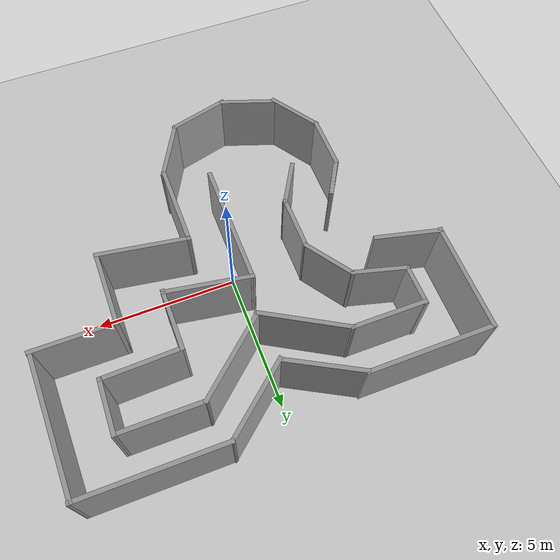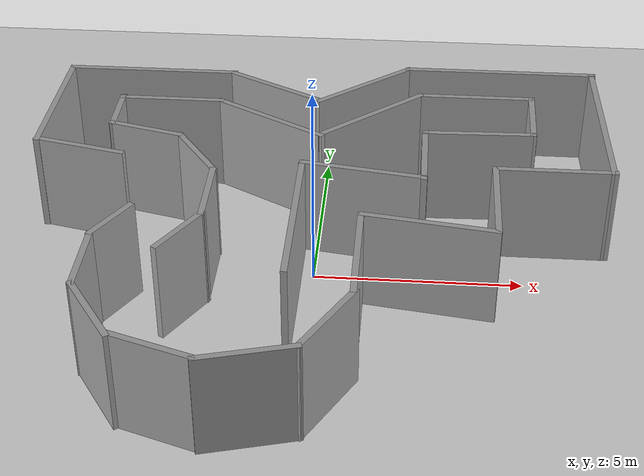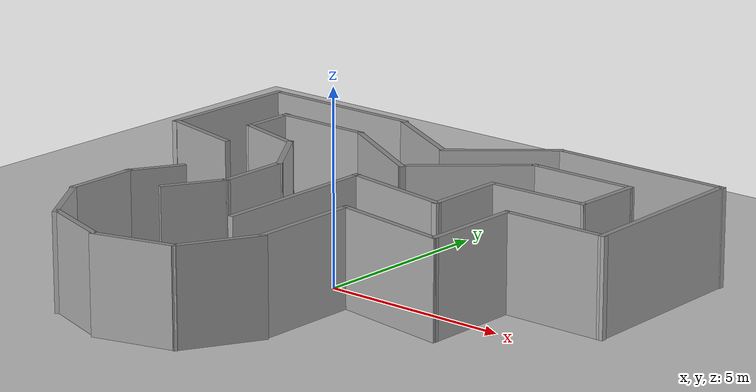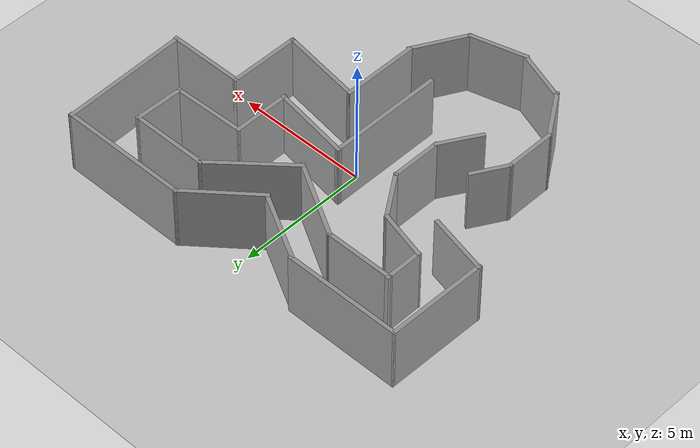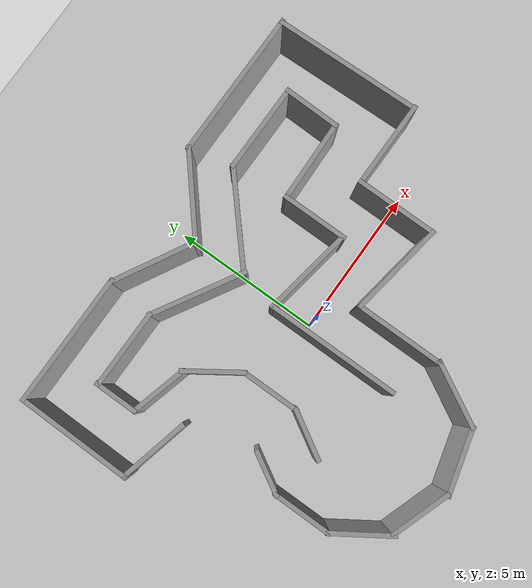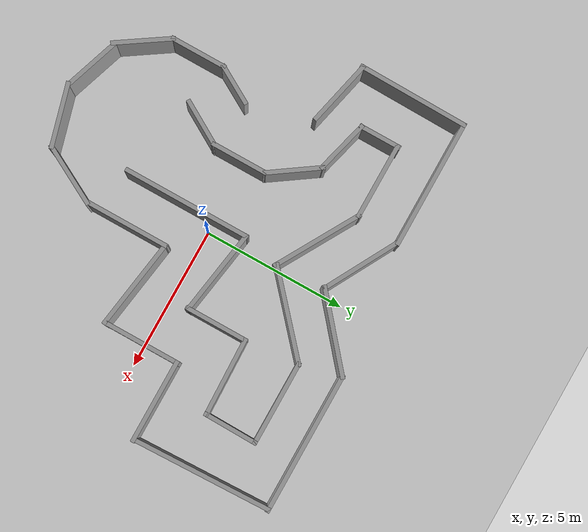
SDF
<sdf version="1.7">
 <world name="default">
  <light name="sun" type="directional">
   <pose>0 0 10 0 -0 0</pose>
   <diffuse>0.8 0.8 0.8 1</diffuse>
   <specular>0.2 0.2 0.2 1</specular>
   <attenuation>
    <range>1000</range>
    <constant>0.9</constant>
    <linear>0.01</linear>
    <quadratic>0.001</quadratic>
   </attenuation>
   <direction>-0.5 0.1 -0.9</direction>
   <spot><inner_angle>0</inner_angle><outer_angle>0</outer_angle><falloff>0</falloff></spot>
  </light>
  <model name="ground_plane">
   <static>1</static>
   <link name="link">
    <collision name="collision">
     <geometry><plane><normal>0 0 1</normal><size>100 100</size></plane></geometry>
     <surface><friction><ode><mu>100</mu><mu2>50</mu2></ode></friction></surface>
    </collision>
    <visual name="visual">
     <cast_shadows>0</cast_shadows>
     <geometry><plane><normal>0 0 1</normal><size>100 100</size></plane></geometry>
     <material>
      <script><uri>file://media/materials/scripts/gazebo.material</uri><name>Gazebo/Grey</name></script>
     </material>
    </visual>
   </link>
  </model>
  <gravity>0 0 -9.8</gravity>
  <magnetic_field>6e-06 2.3e-05 -4.2e-05</magnetic_field>
  <atmosphere type="adiabatic"/>
  <physics type="ode">
   <max_step_size>0.001</max_step_size>
   <real_time_factor>1</real_time_factor>
   <real_time_update_rate>1000</real_time_update_rate>
  </physics>
  <scene><ambient>0.4 0.4 0.4 1</ambient><background>0.7 0.7 0.7 1</background><shadows>1</shadows></scene>
  <audio><device>default</device></audio>
  <spherical_coordinates>
   <surface_model>EARTH_WGS84</surface_model>
   <latitude_deg>0</latitude_deg>
   <longitude_deg>0</longitude_deg>
   <elevation>0</elevation>
   <heading_deg>0</heading_deg>
  </spherical_coordinates>
  <model name="map2_walls">
   <pose>0.048098 -0.017103 0 0 -0 0</pose>
   <link name="Wall_0">
    <collision name="Wall_0_Collision">
     <geometry><box><size>1.5 0.15 2.5</size></box></geometry>
     <pose>0 0 1.25 0 -0 0</pose>
    </collision>
    <visual name="Wall_0_Visual">
     <pose>0 0 1.25 0 -0 0</pose>
     <geometry><box><size>1.5 0.15 2.5</size></box></geometry>
     <material>
      <script><uri>file://media/materials/scripts/gazebo.material</uri><name>Gazebo/Grey</name></script>
      <ambient>1 1 1 1</ambient>
     </material>
     <meta><layer>0</layer></meta>
    </visual>
    <pose>-4.48822 -1.46625 0 0 -0 -2.0944</pose>
   </link>
   <link name="Wall_1">
    <collision name="Wall_1_Collision">
     <geometry><box><size>2 0.15 2.5</size></box></geometry>
     <pose>0 0 1.25 0 -0 0</pose>
    </collision>
    <visual name="Wall_1_Visual">
     <pose>0 0 1.25 0 -0 0</pose>
     <geometry><box><size>2 0.15 2.5</size></box></geometry>
     <material>
      <script><uri>file://media/materials/scripts/gazebo.material</uri><name>Gazebo/Grey</name></script>
      <ambient>1 1 1 1</ambient>
     </material>
     <meta><layer>0</layer></meta>
    </visual>
    <pose>-4.82572 -2.97582 0 0 -0 -1.5708</pose>
   </link>
   <link name="Wall_10">
    <collision name="Wall_10_Collision">
     <geometry><box><size>4.97864 0.15 2.5</size></box></geometry>
     <pose>0 0 1.25 0 -0 0</pose>
    </collision>
    <visual name="Wall_10_Visual">
     <pose>0 0 1.25 0 -0 0</pose>
     <geometry><box><size>4.97864 0.15 2.5</size></box></geometry>
     <material>
      <script><uri>file://media/materials/scripts/gazebo.material</uri><name>Gazebo/Grey</name></script>
      <ambient>1 1 1 1</ambient>
     </material>
     <meta><layer>0</layer></meta>
    </visual>
    <pose>6.90514 3.70719 0 0 -0 1.6023</pose>
   </link>
   <link name="Wall_11">
    <collision name="Wall_11_Collision">
     <geometry><box><size>5 0.15 2.5</size></box></geometry>
     <pose>0 0 1.25 0 -0 0</pose>
    </collision>
    <visual name="Wall_11_Visual">
     <pose>0 0 1.25 0 -0 0</pose>
     <geometry><box><size>5 0.15 2.5</size></box></geometry>
     <material>
      <script><uri>file://media/materials/scripts/gazebo.material</uri><name>Gazebo/Grey</name></script>
      <ambient>1 1 1 1</ambient>
     </material>
     <meta><layer>0</layer></meta>
    </visual>
    <pose>4.43451 6.12031 0 0 -0 3.14159</pose>
   </link>
   <link name="Wall_12">
    <collision name="Wall_12_Collision">
     <geometry><box><size>3.06848 0.15 2.5</size></box></geometry>
     <pose>0 0 1.25 0 -0 0</pose>
    </collision>
    <visual name="Wall_12_Visual">
     <pose>0 0 1.25 0 -0 0</pose>
     <geometry><box><size>3.06848 0.15 2.5</size></box></geometry>
     <material>
      <script><uri>file://media/materials/scripts/gazebo.material</uri><name>Gazebo/Grey</name></script>
      <ambient>1 1 1 1</ambient>
     </material>
     <meta><layer>0</layer></meta>
    </visual>
    <pose>0.895304 5.17802 0 0 -0 -2.4396</pose>
   </link>
   <link name="Wall_13">
    <collision name="Wall_13_Collision">
     <geometry><box><size>2.85605 0.15 2.5</size></box></geometry>
     <pose>0 0 1.25 0 -0 0</pose>
    </collision>
    <visual name="Wall_13_Visual">
     <pose>0 0 1.25 0 -0 0</pose>
     <geometry><box><size>2.85605 0.15 2.5</size></box></geometry>
     <material>
      <script><uri>file://media/materials/scripts/gazebo.material</uri><name>Gazebo/Grey</name></script>
      <ambient>1 1 1 1</ambient>
     </material>
     <meta><layer>0</layer></meta>
    </visual>
    <pose>-1.40557 4.91614 0 0 -0 2.64048</pose>
   </link>
   <link name="Wall_14">
    <collision name="Wall_14_Collision">
     <geometry><box><size>4.5 0.15 2.5</size></box></geometry>
     <pose>0 0 1.25 0 -0 0</pose>
    </collision>
    <visual name="Wall_14_Visual">
     <pose>0 0 1.25 0 -0 0</pose>
     <geometry><box><size>4.5 0.15 2.5</size></box></geometry>
     <material>
      <script><uri>file://media/materials/scripts/gazebo.material</uri><name>Gazebo/Grey</name></script>
      <ambient>1 1 1 1</ambient>
     </material>
     <meta><layer>0</layer></meta>
    </visual>
    <pose>-4.76724 5.59656 0 0 -0 3.14159</pose>
   </link>
   <link name="Wall_15">
    <collision name="Wall_15_Collision">
     <geometry><box><size>3.90914 0.15 2.5</size></box></geometry>
     <pose>0 0 1.25 0 -0 0</pose>
    </collision>
    <visual name="Wall_15_Visual">
     <pose>0 0 1.25 0 -0 0</pose>
     <geometry><box><size>3.90914 0.15 2.5</size></box></geometry>
     <material>
      <script><uri>file://media/materials/scripts/gazebo.material</uri><name>Gazebo/Grey</name></script>
      <ambient>1 1 1 1</ambient>
     </material>
     <meta><layer>0</layer></meta>
    </visual>
    <pose>-6.96933 3.71718 0 0 -0 -1.58521</pose>
   </link>
   <link name="Wall_16">
    <collision name="Wall_16_Collision">
     <geometry><box><size>2.39009 0.15 2.5</size></box></geometry>
     <pose>0 0 1.25 0 -0 0</pose>
    </collision>
    <visual name="Wall_16_Visual">
     <pose>0 0 1.25 0 -0 0</pose>
     <geometry><box><size>2.39009 0.15 2.5</size></box></geometry>
     <material>
      <script><uri>file://media/materials/scripts/gazebo.material</uri><name>Gazebo/Grey</name></script>
      <ambient>1 1 1 1</ambient>
     </material>
     <meta><layer>0</layer></meta>
    </visual>
    <pose>-5.90615 1.61167 0 0 -0 -0.231106</pose>
   </link>
   <link name="Wall_18">
    <collision name="Wall_18_Collision">
     <geometry><box><size>4.5 0.15 2.5</size></box></geometry>
     <pose>0 0 1.25 0 -0 0</pose>
    </collision>
    <visual name="Wall_18_Visual">
     <pose>0 0 1.25 0 -0 0</pose>
     <geometry><box><size>4.5 0.15 2.5</size></box></geometry>
     <material>
      <script><uri>file://media/materials/scripts/gazebo.material</uri><name>Gazebo/Grey</name></script>
      <ambient>1 1 1 1</ambient>
     </material>
     <meta><layer>0</layer></meta>
    </visual>
    <pose>-0.40937 -0.927162 0 0 -0 1.5708</pose>
   </link>
   <link name="Wall_19">
    <collision name="Wall_19_Collision">
     <geometry><box><size>3.10048 0.15 2.5</size></box></geometry>
     <pose>0 0 1.25 0 -0 0</pose>
    </collision>
    <visual name="Wall_19_Visual">
     <pose>0 0 1.25 0 -0 0</pose>
     <geometry><box><size>3.10048 0.15 2.5</size></box></geometry>
     <material>
      <script><uri>file://media/materials/scripts/gazebo.material</uri><name>Gazebo/Grey</name></script>
      <ambient>1 1 1 1</ambient>
     </material>
     <meta><layer>0</layer></meta>
    </visual>
    <pose>1.04693 1.01217 0 0 -0 -0.160437</pose>
   </link>
   <link name="Wall_2">
    <collision name="Wall_2_Collision">
     <geometry><box><size>2.10103 0.15 2.5</size></box></geometry>
     <pose>0 0 1.25 0 -0 0</pose>
    </collision>
    <visual name="Wall_2_Visual">
     <pose>0 0 1.25 0 -0 0</pose>
     <geometry><box><size>2.10103 0.15 2.5</size></box></geometry>
     <material>
      <script><uri>file://media/materials/scripts/gazebo.material</uri><name>Gazebo/Grey</name></script>
      <ambient>1 1 1 1</ambient>
     </material>
     <meta><layer>0</layer></meta>
    </visual>
    <pose>-4.28884 -4.71531 0 0 -0 -0.988009</pose>
   </link>
   <link name="Wall_20">
    <collision name="Wall_20_Collision">
     <geometry><box><size>2.25 0.15 2.5</size></box></geometry>
     <pose>0 0 1.25 0 -0 0</pose>
    </collision>
    <visual name="Wall_20_Visual">
     <pose>0 0 1.25 0 -0 0</pose>
     <geometry><box><size>2.25 0.15 2.5</size></box></geometry>
     <material>
      <script><uri>file://media/materials/scripts/gazebo.material</uri><name>Gazebo/Grey</name></script>
      <ambient>1 1 1 1</ambient>
     </material>
     <meta><layer>0</layer></meta>
    </visual>
    <pose>2.50322 1.79608 0 0 -0 1.5708</pose>
   </link>
   <link name="Wall_21">
    <collision name="Wall_21_Collision">
     <geometry><box><size>2.81187 0.15 2.5</size></box></geometry>
     <pose>0 0 1.25 0 -0 0</pose>
    </collision>
    <visual name="Wall_21_Visual">
     <pose>0 0 1.25 0 -0 0</pose>
     <geometry><box><size>2.81187 0.15 2.5</size></box></geometry>
     <material>
      <script><uri>file://media/materials/scripts/gazebo.material</uri><name>Gazebo/Grey</name></script>
      <ambient>1 1 1 1</ambient>
     </material>
     <meta><layer>0</layer></meta>
    </visual>
    <pose>3.83364 2.88316 0 0 -0 0.027862</pose>
   </link>
   <link name="Wall_22">
    <collision name="Wall_22_Collision">
     <geometry><box><size>1.94021 0.15 2.5</size></box></geometry>
     <pose>0 0 1.25 0 -0 0</pose>
    </collision>
    <visual name="Wall_22_Visual">
     <pose>0 0 1.25 0 -0 0</pose>
     <geometry><box><size>1.94021 0.15 2.5</size></box></geometry>
     <material>
      <script><uri>file://media/materials/scripts/gazebo.material</uri><name>Gazebo/Grey</name></script>
      <ambient>1 1 1 1</ambient>
     </material>
     <meta><layer>0</layer></meta>
    </visual>
    <pose>5.17879 3.81522 0 0 -0 1.55434</pose>
   </link>
   <link name="Wall_23">
    <collision name="Wall_23_Collision">
     <geometry><box><size>3 0.15 2.5</size></box></geometry>
     <pose>0 0 1.25 0 -0 0</pose>
    </collision>
    <visual name="Wall_23_Visual">
     <pose>0 0 1.25 0 -0 0</pose>
     <geometry><box><size>3 0.15 2.5</size></box></geometry>
     <material>
      <script><uri>file://media/materials/scripts/gazebo.material</uri><name>Gazebo/Grey</name></script>
      <ambient>1 1 1 1</ambient>
     </material>
     <meta><layer>0</layer></meta>
    </visual>
    <pose>3.76852 4.7102 0 0 -0 3.14159</pose>
   </link>
   <link name="Wall_24">
    <collision name="Wall_24_Collision">
     <geometry><box><size>3.40862 0.15 2.5</size></box></geometry>
     <pose>0 0 1.25 0 -0 0</pose>
    </collision>
    <visual name="Wall_24_Visual">
     <pose>0 0 1.25 0 -0 0</pose>
     <geometry><box><size>3.40862 0.15 2.5</size></box></geometry>
     <material>
      <script><uri>file://media/materials/scripts/gazebo.material</uri><name>Gazebo/Grey</name></script>
      <ambient>1 1 1 1</ambient>
     </material>
     <meta><layer>0</layer></meta>
    </visual>
    <pose>1.12285 3.63103 0 0 -0 -2.41764</pose>
   </link>
   <link name="Wall_25">
    <collision name="Wall_25_Collision">
     <geometry><box><size>3.25 0.15 2.5</size></box></geometry>
     <pose>0 0 1.25 0 -0 0</pose>
    </collision>
    <visual name="Wall_25_Visual">
     <pose>0 0 1.25 0 -0 0</pose>
     <geometry><box><size>3.25 0.15 2.5</size></box></geometry>
     <material>
      <script><uri>file://media/materials/scripts/gazebo.material</uri><name>Gazebo/Grey</name></script>
      <ambient>1 1 1 1</ambient>
     </material>
     <meta><layer>0</layer></meta>
    </visual>
    <pose>-1.40974 3.29644 0 0 -0 2.61799</pose>
   </link>
   <link name="Wall_26">
    <collision name="Wall_26_Collision">
     <geometry><box><size>2.69174 0.15 2.5</size></box></geometry>
     <pose>0 0 1.25 0 -0 0</pose>
    </collision>
    <visual name="Wall_26_Visual">
     <pose>0 0 1.25 0 -0 0</pose>
     <geometry><box><size>2.69174 0.15 2.5</size></box></geometry>
     <material>
      <script><uri>file://media/materials/scripts/gazebo.material</uri><name>Gazebo/Grey</name></script>
      <ambient>1 1 1 1</ambient>
     </material>
     <meta><layer>0</layer></meta>
    </visual>
    <pose>-4.02295 4.07395 0 0 -0 3.13961</pose>
   </link>
   <link name="Wall_27">
    <collision name="Wall_27_Collision">
     <geometry><box><size>1.5 0.15 2.5</size></box></geometry>
     <pose>0 0 1.25 0 -0 0</pose>
    </collision>
    <visual name="Wall_27_Visual">
     <pose>0 0 1.25 0 -0 0</pose>
     <geometry><box><size>1.5 0.15 2.5</size></box></geometry>
     <material>
      <script><uri>file://media/materials/scripts/gazebo.material</uri><name>Gazebo/Grey</name></script>
      <ambient>1 1 1 1</ambient>
     </material>
     <meta><layer>0</layer></meta>
    </visual>
    <pose>-5.29382 3.43189 0 0 -0 -1.5708</pose>
   </link>
   <link name="Wall_28">
    <collision name="Wall_28_Collision">
     <geometry><box><size>1.96718 0.15 2.5</size></box></geometry>
     <pose>0 0 1.25 0 -0 0</pose>
    </collision>
    <visual name="Wall_28_Visual">
     <pose>0 0 1.25 0 -0 0</pose>
     <geometry><box><size>1.96718 0.15 2.5</size></box></geometry>
     <material>
      <script><uri>file://media/materials/scripts/gazebo.material</uri><name>Gazebo/Grey</name></script>
      <ambient>1 1 1 1</ambient>
     </material>
     <meta><layer>0</layer></meta>
    </visual>
    <pose>-4.41555 2.52414 0 0 -0 -0.259051</pose>
   </link>
   <link name="Wall_29">
    <collision name="Wall_29_Collision">
     <geometry><box><size>2.00785 0.15 2.5</size></box></geometry>
     <pose>0 0 1.25 0 -0 0</pose>
    </collision>
    <visual name="Wall_29_Visual">
     <pose>0 0 1.25 0 -0 0</pose>
     <geometry><box><size>2.00785 0.15 2.5</size></box></geometry>
     <material>
      <script><uri>file://media/materials/scripts/gazebo.material</uri><name>Gazebo/Grey</name></script>
      <ambient>1 1 1 1</ambient>
     </material>
     <meta><layer>0</layer></meta>
    </visual>
    <pose>-3.01346 1.55466 0 0 -0 -0.971707</pose>
   </link>
   <link name="Wall_3">
    <collision name="Wall_3_Collision">
     <geometry><box><size>2.10203 0.15 2.5</size></box></geometry>
     <pose>0 0 1.25 0 -0 0</pose>
    </collision>
    <visual name="Wall_3_Visual">
     <pose>0 0 1.25 0 -0 0</pose>
     <geometry><box><size>2.10203 0.15 2.5</size></box></geometry>
     <material>
      <script><uri>file://media/materials/scripts/gazebo.material</uri><name>Gazebo/Grey</name></script>
      <ambient>1 1 1 1</ambient>
     </material>
     <meta><layer>0</layer></meta>
    </visual>
    <pose>-2.82899 -5.78635 0 0 -0 -0.331208</pose>
   </link>
   <link name="Wall_30">
    <collision name="Wall_30_Collision">
     <geometry><box><size>2 0.15 2.5</size></box></geometry>
     <pose>0 0 1.25 0 -0 0</pose>
    </collision>
    <visual name="Wall_30_Visual">
     <pose>0 0 1.25 0 -0 0</pose>
     <geometry><box><size>2 0.15 2.5</size></box></geometry>
     <material>
      <script><uri>file://media/materials/scripts/gazebo.material</uri><name>Gazebo/Grey</name></script>
      <ambient>1 1 1 1</ambient>
     </material>
     <meta><layer>0</layer></meta>
    </visual>
    <pose>-2.48965 -0.167907 0 0 -0 -1.5708</pose>
   </link>
   <link name="Wall_31">
    <collision name="Wall_31_Collision">
     <geometry><box><size>1.73025 0.15 2.5</size></box></geometry>
     <pose>0 0 1.25 0 -0 0</pose>
    </collision>
    <visual name="Wall_31_Visual">
     <pose>0 0 1.25 0 -0 0</pose>
     <geometry><box><size>1.73025 0.15 2.5</size></box></geometry>
     <material>
      <script><uri>file://media/materials/scripts/gazebo.material</uri><name>Gazebo/Grey</name></script>
      <ambient>1 1 1 1</ambient>
     </material>
     <meta><layer>0</layer></meta>
    </visual>
    <pose>-2.89013 -1.77402 0 0 -0 -2.10232</pose>
   </link>
   <link name="Wall_4">
    <collision name="Wall_4_Collision">
     <geometry><box><size>2.25 0.15 2.5</size></box></geometry>
     <pose>0 0 1.25 0 -0 0</pose>
    </collision>
    <visual name="Wall_4_Visual">
     <pose>0 0 1.25 0 -0 0</pose>
     <geometry><box><size>2.25 0.15 2.5</size></box></geometry>
     <material>
      <script><uri>file://media/materials/scripts/gazebo.material</uri><name>Gazebo/Grey</name></script>
      <ambient>1 1 1 1</ambient>
     </material>
     <meta><layer>0</layer></meta>
    </visual>
    <pose>-0.891804 -5.8624 0 0 -0 0.261799</pose>
   </link>
   <link name="Wall_5">
    <collision name="Wall_5_Collision">
     <geometry><box><size>2.28349 0.15 2.5</size></box></geometry>
     <pose>0 0 1.25 0 -0 0</pose>
    </collision>
    <visual name="Wall_5_Visual">
     <pose>0 0 1.25 0 -0 0</pose>
     <geometry><box><size>2.28349 0.15 2.5</size></box></geometry>
     <material>
      <script><uri>file://media/materials/scripts/gazebo.material</uri><name>Gazebo/Grey</name></script>
      <ambient>1 1 1 1</ambient>
     </material>
     <meta><layer>0</layer></meta>
    </visual>
    <pose>0.630545 -4.65268 0 0 -0 1.07432</pose>
   </link>
   <link name="Wall_6">
    <collision name="Wall_6_Collision">
     <geometry><box><size>3 0.15 2.5</size></box></geometry>
     <pose>0 0 1.25 0 -0 0</pose>
    </collision>
    <visual name="Wall_6_Visual">
     <pose>0 0 1.25 0 -0 0</pose>
     <geometry><box><size>3 0.15 2.5</size></box></geometry>
     <material>
      <script><uri>file://media/materials/scripts/gazebo.material</uri><name>Gazebo/Grey</name></script>
      <ambient>1 1 1 1</ambient>
     </material>
     <meta><layer>0</layer></meta>
    </visual>
    <pose>1.10825 -2.28973 0 0 -0 1.5708</pose>
   </link>
   <link name="Wall_7">
    <collision name="Wall_7_Collision">
     <geometry><box><size>3.23955 0.15 2.5</size></box></geometry>
     <pose>0 0 1.25 0 -0 0</pose>
    </collision>
    <visual name="Wall_7_Visual">
     <pose>0 0 1.25 0 -0 0</pose>
     <geometry><box><size>3.23955 0.15 2.5</size></box></geometry>
     <material>
      <script><uri>file://media/materials/scripts/gazebo.material</uri><name>Gazebo/Grey</name></script>
      <ambient>1 1 1 1</ambient>
     </material>
     <meta><layer>0</layer></meta>
    </visual>
    <pose>2.66534 -1.10054 0 0 -0 -0.153248</pose>
   </link>
   <link name="Wall_8">
    <collision name="Wall_8_Collision">
     <geometry><box><size>2.75 0.15 2.5</size></box></geometry>
     <pose>0 0 1.25 0 -0 0</pose>
    </collision>
    <visual name="Wall_8_Visual">
     <pose>0 0 1.25 0 -0 0</pose>
     <geometry><box><size>2.75 0.15 2.5</size></box></geometry>
     <material>
      <script><uri>file://media/materials/scripts/gazebo.material</uri><name>Gazebo/Grey</name></script>
      <ambient>1 1 1 1</ambient>
     </material>
     <meta><layer>0</layer></meta>
    </visual>
    <pose>4.19202 -0.005929 0 0 -0 1.5708</pose>
   </link>
   <link name="Wall_9">
    <collision name="Wall_9_Collision">
     <geometry><box><size>2.96958 0.15 2.5</size></box></geometry>
     <pose>0 0 1.25 0 -0 0</pose>
    </collision>
    <visual name="Wall_9_Visual">
     <pose>0 0 1.25 0 -0 0</pose>
     <geometry><box><size>2.96958 0.15 2.5</size></box></geometry>
     <material>
      <script><uri>file://media/materials/scripts/gazebo.material</uri><name>Gazebo/Grey</name></script>
      <ambient>1 1 1 1</ambient>
     </material>
     <meta><layer>0</layer></meta>
    </visual>
    <pose>5.60181 1.29407 0 0 -0 0</pose>
   </link>
   <static>1</static>
  </model>
 </world>
</sdf>
